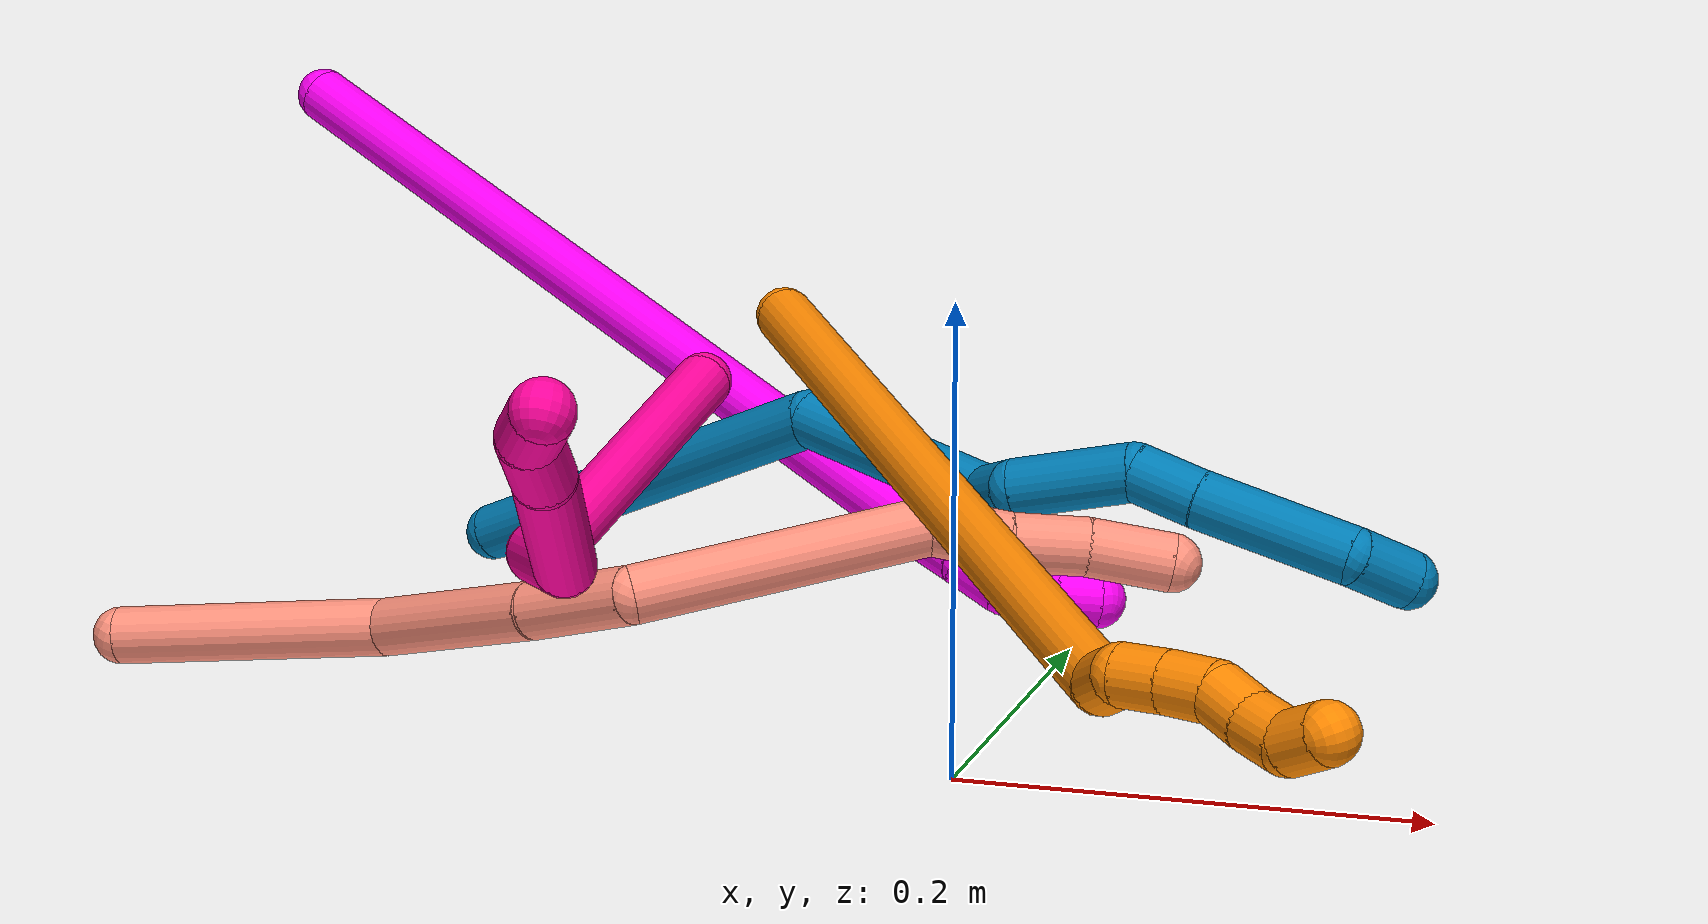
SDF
<sdf version="1.7">
 <world name="default">
  <model name="9">
   <static>0</static>
   <link name="9">
    <collision name="collision-cylinder-e_1_1_4">
     <pose>0.041491 -0.010642 -0.088415 3.0218 0.436008 2.61285</pose>
     <geometry><cylinder><radius>0.0125</radius><length>0.196489</length></cylinder></geometry>
     <surface>
      <friction><ode><mu>1.16</mu><mu2>1.16</mu2><slip1>0</slip1><slip2>0</slip2></ode></friction>
      <contact><ode><kp>1e+06</kp><kd>1</kd><max_vel>0</max_vel><min_depth>0.001</min_depth></ode></contact>
     </surface>
    </collision>
    <visual name="visual-cylinder-e_1_1_4">
     <pose>0.041491 -0.010642 -0.088415 3.0218 0.436008 2.61285</pose>
     <geometry><cylinder><radius>0.0125</radius><length>0.196489</length></cylinder></geometry>
     <material><ambient>0 0.490196 0.709804 1</ambient></material>
    </visual>
    <collision name="collision-cylinder-e_2_4_5">
     <pose>0.125454 -0.02054 -0.202702 -3.1128 1.02348 -3.09034</pose>
     <geometry><cylinder><radius>0.0125</radius><length>0.099474</length></cylinder></geometry>
     <surface>
      <friction><ode><mu>1.16</mu><mu2>1.16</mu2><slip1>0</slip1><slip2>0</slip2></ode></friction>
      <contact><ode><kp>1e+06</kp><kd>1</kd><max_vel>0</max_vel><min_depth>0.001</min_depth></ode></contact>
     </surface>
    </collision>
    <visual name="visual-cylinder-e_2_4_5">
     <pose>0.125454 -0.02054 -0.202702 -3.1128 1.02348 -3.09034</pose>
     <geometry><cylinder><radius>0.0125</radius><length>0.099474</length></cylinder></geometry>
     <material><ambient>0 0.490196 0.709804 1</ambient></material>
    </visual>
    <collision name="collision-cylinder-e_3_5_6">
     <pose>0.173289 -0.015165 -0.239986 -2.75618 0.410713 -1.63603</pose>
     <geometry><cylinder><radius>0.0125</radius><length>0.026866</length></cylinder></geometry>
     <surface>
      <friction><ode><mu>1.16</mu><mu2>1.16</mu2><slip1>0</slip1><slip2>0</slip2></ode></friction>
      <contact><ode><kp>1e+06</kp><kd>1</kd><max_vel>0</max_vel><min_depth>0.001</min_depth></ode></contact>
     </surface>
    </collision>
    <visual name="visual-cylinder-e_3_5_6">
     <pose>0.173289 -0.015165 -0.239986 -2.75618 0.410713 -1.63603</pose>
     <geometry><cylinder><radius>0.0125</radius><length>0.026866</length></cylinder></geometry>
     <material><ambient>0 0.490196 0.709804 1</ambient></material>
    </visual>
    <collision name="collision-cylinder-e_4_6_7">
     <pose>0.193623 -0.020248 -0.270865 2.67878 0.602728 1.84433</pose>
     <geometry><cylinder><radius>0.0125</radius><length>0.052816</length></cylinder></geometry>
     <surface>
      <friction><ode><mu>1.16</mu><mu2>1.16</mu2><slip1>0</slip1><slip2>0</slip2></ode></friction>
      <contact><ode><kp>1e+06</kp><kd>1</kd><max_vel>0</max_vel><min_depth>0.001</min_depth></ode></contact>
     </surface>
    </collision>
    <visual name="visual-cylinder-e_4_6_7">
     <pose>0.193623 -0.020248 -0.270865 2.67878 0.602728 1.84433</pose>
     <geometry><cylinder><radius>0.0125</radius><length>0.052816</length></cylinder></geometry>
     <material><ambient>0 0.490196 0.709804 1</ambient></material>
    </visual>
    <collision name="collision-cylinder-e_5_7_8">
     <pose>0.221805 -0.033551 -0.295642 2.54701 1.11905 2.23168</pose>
     <geometry><cylinder><radius>0.0125</radius><length>0.029369</length></cylinder></geometry>
     <surface>
      <friction><ode><mu>1.16</mu><mu2>1.16</mu2><slip1>0</slip1><slip2>0</slip2></ode></friction>
      <contact><ode><kp>1e+06</kp><kd>1</kd><max_vel>0</max_vel><min_depth>0.001</min_depth></ode></contact>
     </surface>
    </collision>
    <visual name="visual-cylinder-e_5_7_8">
     <pose>0.221805 -0.033551 -0.295642 2.54701 1.11905 2.23168</pose>
     <geometry><cylinder><radius>0.0125</radius><length>0.029369</length></cylinder></geometry>
     <material><ambient>0 0.490196 0.709804 1</ambient></material>
    </visual>
    <collision name="collision-cylinder-e_6_8_9">
     <pose>0.264694 -0.047169 -0.313663 2.47369 1.07139 2.08373</pose>
     <geometry><cylinder><radius>0.0125</radius><length>0.067612</length></cylinder></geometry>
     <surface>
      <friction><ode><mu>1.16</mu><mu2>1.16</mu2><slip1>0</slip1><slip2>0</slip2></ode></friction>
      <contact><ode><kp>1e+06</kp><kd>1</kd><max_vel>0</max_vel><min_depth>0.001</min_depth></ode></contact>
     </surface>
    </collision>
    <visual name="visual-cylinder-e_6_8_9">
     <pose>0.264694 -0.047169 -0.313663 2.47369 1.07139 2.08373</pose>
     <geometry><cylinder><radius>0.0125</radius><length>0.067612</length></cylinder></geometry>
     <material><ambient>0 0.490196 0.709804 1</ambient></material>
    </visual>
    <collision name="collision-cylinder-e_7_9_2">
     <pose>0.303669 -0.067159 -0.325106 1.44421 0.746912 0.664672</pose>
     <geometry><cylinder><radius>0.0125</radius><length>0.027374</length></cylinder></geometry>
     <surface>
      <friction><ode><mu>1.16</mu><mu2>1.16</mu2><slip1>0</slip1><slip2>0</slip2></ode></friction>
      <contact><ode><kp>1e+06</kp><kd>1</kd><max_vel>0</max_vel><min_depth>0.001</min_depth></ode></contact>
     </surface>
    </collision>
    <visual name="visual-cylinder-e_7_9_2">
     <pose>0.303669 -0.067159 -0.325106 1.44421 0.746912 0.664672</pose>
     <geometry><cylinder><radius>0.0125</radius><length>0.027374</length></cylinder></geometry>
     <material><ambient>0 0.490196 0.709804 1</ambient></material>
    </visual>
    <collision name="collision-sphere-2">
     <pose>0.312968 -0.077122 -0.323838 0 -0 0</pose>
     <geometry><sphere><radius>0.0125</radius></sphere></geometry>
     <surface>
      <friction><ode><mu>1.16</mu><mu2>1.16</mu2><slip1>0</slip1><slip2>0</slip2></ode></friction>
      <contact><ode><kp>1e+06</kp><kd>1</kd><max_vel>0</max_vel><min_depth>0.001</min_depth></ode></contact>
     </surface>
    </collision>
    <visual name="visual-sphere-2">
     <pose>0.312968 -0.077122 -0.323838 0 -0 0</pose>
     <geometry><sphere><radius>0.0125</radius></sphere></geometry>
     <material><ambient>0 0.490196 0.709804 1</ambient></material>
    </visual>
    <collision name="collision-sphere-9">
     <pose>0.294371 -0.057196 -0.326374 0 -0 0</pose>
     <geometry><sphere><radius>0.0125</radius></sphere></geometry>
     <surface>
      <friction><ode><mu>1.16</mu><mu2>1.16</mu2><slip1>0</slip1><slip2>0</slip2></ode></friction>
      <contact><ode><kp>1e+06</kp><kd>1</kd><max_vel>0</max_vel><min_depth>0.001</min_depth></ode></contact>
     </surface>
    </collision>
    <visual name="visual-sphere-9">
     <pose>0.294371 -0.057196 -0.326374 0 -0 0</pose>
     <geometry><sphere><radius>0.0125</radius></sphere></geometry>
     <material><ambient>0 0.490196 0.709804 1</ambient></material>
    </visual>
    <collision name="collision-sphere-4">
     <pose>0.082982 -0.021285 -0.17683 0 -0 0</pose>
     <geometry><sphere><radius>0.0125</radius></sphere></geometry>
     <surface>
      <friction><ode><mu>1.16</mu><mu2>1.16</mu2><slip1>0</slip1><slip2>0</slip2></ode></friction>
      <contact><ode><kp>1e+06</kp><kd>1</kd><max_vel>0</max_vel><min_depth>0.001</min_depth></ode></contact>
     </surface>
    </collision>
    <visual name="visual-sphere-4">
     <pose>0.082982 -0.021285 -0.17683 0 -0 0</pose>
     <geometry><sphere><radius>0.0125</radius></sphere></geometry>
     <material><ambient>0 0.490196 0.709804 1</ambient></material>
    </visual>
    <collision name="collision-sphere-1">
     <geometry><sphere><radius>0.0125</radius></sphere></geometry>
     <surface>
      <friction><ode><mu>1.16</mu><mu2>1.16</mu2><slip1>0</slip1><slip2>0</slip2></ode></friction>
      <contact><ode><kp>1e+06</kp><kd>1</kd><max_vel>0</max_vel><min_depth>0.001</min_depth></ode></contact>
     </surface>
    </collision>
    <visual name="visual-sphere-1">
     <geometry><sphere><radius>0.0125</radius></sphere></geometry>
     <material><ambient>0 0.490196 0.709804 1</ambient></material>
    </visual>
    <collision name="collision-sphere-8">
     <pose>0.235017 -0.037142 -0.300952 0 -0 0</pose>
     <geometry><sphere><radius>0.0125</radius></sphere></geometry>
     <surface>
      <friction><ode><mu>1.16</mu><mu2>1.16</mu2><slip1>0</slip1><slip2>0</slip2></ode></friction>
      <contact><ode><kp>1e+06</kp><kd>1</kd><max_vel>0</max_vel><min_depth>0.001</min_depth></ode></contact>
     </surface>
    </collision>
    <visual name="visual-sphere-8">
     <pose>0.235017 -0.037142 -0.300952 0 -0 0</pose>
     <geometry><sphere><radius>0.0125</radius></sphere></geometry>
     <material><ambient>0 0.490196 0.709804 1</ambient></material>
    </visual>
    <collision name="collision-sphere-5">
     <pose>0.167926 -0.019795 -0.228574 0 -0 0</pose>
     <geometry><sphere><radius>0.0125</radius></sphere></geometry>
     <surface>
      <friction><ode><mu>1.16</mu><mu2>1.16</mu2><slip1>0</slip1><slip2>0</slip2></ode></friction>
      <contact><ode><kp>1e+06</kp><kd>1</kd><max_vel>0</max_vel><min_depth>0.001</min_depth></ode></contact>
     </surface>
    </collision>
    <visual name="visual-sphere-5">
     <pose>0.167926 -0.019795 -0.228574 0 -0 0</pose>
     <geometry><sphere><radius>0.0125</radius></sphere></geometry>
     <material><ambient>0 0.490196 0.709804 1</ambient></material>
    </visual>
    <collision name="collision-sphere-6">
     <pose>0.178652 -0.010535 -0.251399 0 -0 0</pose>
     <geometry><sphere><radius>0.0125</radius></sphere></geometry>
     <surface>
      <friction><ode><mu>1.16</mu><mu2>1.16</mu2><slip1>0</slip1><slip2>0</slip2></ode></friction>
      <contact><ode><kp>1e+06</kp><kd>1</kd><max_vel>0</max_vel><min_depth>0.001</min_depth></ode></contact>
     </surface>
    </collision>
    <visual name="visual-sphere-6">
     <pose>0.178652 -0.010535 -0.251399 0 -0 0</pose>
     <geometry><sphere><radius>0.0125</radius></sphere></geometry>
     <material><ambient>0 0.490196 0.709804 1</ambient></material>
    </visual>
    <collision name="collision-sphere-7">
     <pose>0.208593 -0.02996 -0.290331 0 -0 0</pose>
     <geometry><sphere><radius>0.0125</radius></sphere></geometry>
     <surface>
      <friction><ode><mu>1.16</mu><mu2>1.16</mu2><slip1>0</slip1><slip2>0</slip2></ode></friction>
      <contact><ode><kp>1e+06</kp><kd>1</kd><max_vel>0</max_vel><min_depth>0.001</min_depth></ode></contact>
     </surface>
    </collision>
    <visual name="visual-sphere-7">
     <pose>0.208593 -0.02996 -0.290331 0 -0 0</pose>
     <geometry><sphere><radius>0.0125</radius></sphere></geometry>
     <material><ambient>0 0.490196 0.709804 1</ambient></material>
    </visual>
    <inertial>
     <pose>0.136474 -0.023248 -0.194158 0 -0 0</pose>
     <mass>0.5</mass>
     <inertia>
      <ixx>-0.000217</ixx>
      <ixy>0</ixy>
      <ixz>0</ixz>
      <iyy>0.000994</iyy>
      <iyz>0</iyz>
      <izz>-0.000324</izz>
     </inertia>
    </inertial>
   </link>
   <pose>-0.26362 0.173225 0.040789 -2.98672 0.718904 -0.31623</pose>
  </model>
  <model name="10">
   <static>0</static>
   <link name="10">
    <collision name="collision-cylinder-e_1_1_4">
     <pose>0.079428 -0.023092 -0.190887 3.02121 0.39174 2.55183</pose>
     <geometry><cylinder><radius>0.0125</radius><length>0.416076</length></cylinder></geometry>
     <surface>
      <friction><ode><mu>1.16</mu><mu2>1.16</mu2><slip1>0</slip1><slip2>0</slip2></ode></friction>
      <contact><ode><kp>1e+06</kp><kd>1</kd><max_vel>0</max_vel><min_depth>0.001</min_depth></ode></contact>
     </surface>
    </collision>
    <visual name="visual-cylinder-e_1_1_4">
     <pose>0.079428 -0.023092 -0.190887 3.02121 0.39174 2.55183</pose>
     <geometry><cylinder><radius>0.0125</radius><length>0.416076</length></cylinder></geometry>
     <material><ambient>1 0 0.964706 1</ambient></material>
    </visual>
    <collision name="collision-cylinder-e_2_4_5">
     <pose>0.163016 -0.047439 -0.390918 3.00507 0.423392 2.52562</pose>
     <geometry><cylinder><radius>0.0125</radius><length>0.020249</length></cylinder></geometry>
     <surface>
      <friction><ode><mu>1.16</mu><mu2>1.16</mu2><slip1>0</slip1><slip2>0</slip2></ode></friction>
      <contact><ode><kp>1e+06</kp><kd>1</kd><max_vel>0</max_vel><min_depth>0.001</min_depth></ode></contact>
     </surface>
    </collision>
    <visual name="visual-cylinder-e_2_4_5">
     <pose>0.163016 -0.047439 -0.390918 3.00507 0.423392 2.52562</pose>
     <geometry><cylinder><radius>0.0125</radius><length>0.020249</length></cylinder></geometry>
     <material><ambient>1 0 0.964706 1</ambient></material>
    </visual>
    <collision name="collision-cylinder-e_3_5_6">
     <pose>0.173634 -0.04708 -0.40899 -2.9626 0.61866 -2.59413</pose>
     <geometry><cylinder><radius>0.0125</radius><length>0.022272</length></cylinder></geometry>
     <surface>
      <friction><ode><mu>1.16</mu><mu2>1.16</mu2><slip1>0</slip1><slip2>0</slip2></ode></friction>
      <contact><ode><kp>1e+06</kp><kd>1</kd><max_vel>0</max_vel><min_depth>0.001</min_depth></ode></contact>
     </surface>
    </collision>
    <visual name="visual-cylinder-e_3_5_6">
     <pose>0.173634 -0.04708 -0.40899 -2.9626 0.61866 -2.59413</pose>
     <geometry><cylinder><radius>0.0125</radius><length>0.022272</length></cylinder></geometry>
     <material><ambient>1 0 0.964706 1</ambient></material>
    </visual>
    <collision name="collision-cylinder-e_4_6_7">
     <pose>0.189936 -0.04313 -0.421341 -2.54287 1.17231 -2.27138</pose>
     <geometry><cylinder><radius>0.0125</radius><length>0.02136</length></cylinder></geometry>
     <surface>
      <friction><ode><mu>1.16</mu><mu2>1.16</mu2><slip1>0</slip1><slip2>0</slip2></ode></friction>
      <contact><ode><kp>1e+06</kp><kd>1</kd><max_vel>0</max_vel><min_depth>0.001</min_depth></ode></contact>
     </surface>
    </collision>
    <visual name="visual-cylinder-e_4_6_7">
     <pose>0.189936 -0.04313 -0.421341 -2.54287 1.17231 -2.27138</pose>
     <geometry><cylinder><radius>0.0125</radius><length>0.02136</length></cylinder></geometry>
     <material><ambient>1 0 0.964706 1</ambient></material>
    </visual>
    <collision name="collision-cylinder-e_5_7_2">
     <pose>0.209373 -0.039957 -0.427535 -2.84815 1.27773 -2.74881</pose>
     <geometry><cylinder><radius>0.0125</radius><length>0.020042</length></cylinder></geometry>
     <surface>
      <friction><ode><mu>1.16</mu><mu2>1.16</mu2><slip1>0</slip1><slip2>0</slip2></ode></friction>
      <contact><ode><kp>1e+06</kp><kd>1</kd><max_vel>0</max_vel><min_depth>0.001</min_depth></ode></contact>
     </surface>
    </collision>
    <visual name="visual-cylinder-e_5_7_2">
     <pose>0.209373 -0.039957 -0.427535 -2.84815 1.27773 -2.74881</pose>
     <geometry><cylinder><radius>0.0125</radius><length>0.020042</length></cylinder></geometry>
     <material><ambient>1 0 0.964706 1</ambient></material>
    </visual>
    <collision name="collision-sphere-2">
     <pose>0.218967 -0.039119 -0.430306 0 -0 0</pose>
     <geometry><sphere><radius>0.0125</radius></sphere></geometry>
     <surface>
      <friction><ode><mu>1.16</mu><mu2>1.16</mu2><slip1>0</slip1><slip2>0</slip2></ode></friction>
      <contact><ode><kp>1e+06</kp><kd>1</kd><max_vel>0</max_vel><min_depth>0.001</min_depth></ode></contact>
     </surface>
    </collision>
    <visual name="visual-sphere-2">
     <pose>0.218967 -0.039119 -0.430306 0 -0 0</pose>
     <geometry><sphere><radius>0.0125</radius></sphere></geometry>
     <material><ambient>1 0 0.964706 1</ambient></material>
    </visual>
    <collision name="collision-sphere-7">
     <pose>0.199779 -0.040794 -0.424764 0 -0 0</pose>
     <geometry><sphere><radius>0.0125</radius></sphere></geometry>
     <surface>
      <friction><ode><mu>1.16</mu><mu2>1.16</mu2><slip1>0</slip1><slip2>0</slip2></ode></friction>
      <contact><ode><kp>1e+06</kp><kd>1</kd><max_vel>0</max_vel><min_depth>0.001</min_depth></ode></contact>
     </surface>
    </collision>
    <visual name="visual-sphere-7">
     <pose>0.199779 -0.040794 -0.424764 0 -0 0</pose>
     <geometry><sphere><radius>0.0125</radius></sphere></geometry>
     <material><ambient>1 0 0.964706 1</ambient></material>
    </visual>
    <collision name="collision-sphere-6">
     <pose>0.180093 -0.045465 -0.417917 0 -0 0</pose>
     <geometry><sphere><radius>0.0125</radius></sphere></geometry>
     <surface>
      <friction><ode><mu>1.16</mu><mu2>1.16</mu2><slip1>0</slip1><slip2>0</slip2></ode></friction>
      <contact><ode><kp>1e+06</kp><kd>1</kd><max_vel>0</max_vel><min_depth>0.001</min_depth></ode></contact>
     </surface>
    </collision>
    <visual name="visual-sphere-6">
     <pose>0.180093 -0.045465 -0.417917 0 -0 0</pose>
     <geometry><sphere><radius>0.0125</radius></sphere></geometry>
     <material><ambient>1 0 0.964706 1</ambient></material>
    </visual>
    <collision name="collision-sphere-5">
     <pose>0.167176 -0.048696 -0.400063 0 -0 0</pose>
     <geometry><sphere><radius>0.0125</radius></sphere></geometry>
     <surface>
      <friction><ode><mu>1.16</mu><mu2>1.16</mu2><slip1>0</slip1><slip2>0</slip2></ode></friction>
      <contact><ode><kp>1e+06</kp><kd>1</kd><max_vel>0</max_vel><min_depth>0.001</min_depth></ode></contact>
     </surface>
    </collision>
    <visual name="visual-sphere-5">
     <pose>0.167176 -0.048696 -0.400063 0 -0 0</pose>
     <geometry><sphere><radius>0.0125</radius></sphere></geometry>
     <material><ambient>1 0 0.964706 1</ambient></material>
    </visual>
    <collision name="collision-sphere-1">
     <geometry><sphere><radius>0.0125</radius></sphere></geometry>
     <surface>
      <friction><ode><mu>1.16</mu><mu2>1.16</mu2><slip1>0</slip1><slip2>0</slip2></ode></friction>
      <contact><ode><kp>1e+06</kp><kd>1</kd><max_vel>0</max_vel><min_depth>0.001</min_depth></ode></contact>
     </surface>
    </collision>
    <visual name="visual-sphere-1">
     <geometry><sphere><radius>0.0125</radius></sphere></geometry>
     <material><ambient>1 0 0.964706 1</ambient></material>
    </visual>
    <collision name="collision-sphere-4">
     <pose>0.158857 -0.046183 -0.381774 0 -0 0</pose>
     <geometry><sphere><radius>0.0125</radius></sphere></geometry>
     <surface>
      <friction><ode><mu>1.16</mu><mu2>1.16</mu2><slip1>0</slip1><slip2>0</slip2></ode></friction>
      <contact><ode><kp>1e+06</kp><kd>1</kd><max_vel>0</max_vel><min_depth>0.001</min_depth></ode></contact>
     </surface>
    </collision>
    <visual name="visual-sphere-4">
     <pose>0.158857 -0.046183 -0.381774 0 -0 0</pose>
     <geometry><sphere><radius>0.0125</radius></sphere></geometry>
     <material><ambient>1 0 0.964706 1</ambient></material>
    </visual>
    <inertial>
     <pose>0.09694 -0.026678 -0.228034 0 -0 0</pose>
     <mass>0.5</mass>
     <inertia>
      <ixx>-0.001516</ixx>
      <ixy>0</ixy>
      <ixz>0</ixz>
      <iyy>0.008215</iyy>
      <iyz>0</iyz>
      <izz>-0.001669</izz>
     </inertia>
    </inertial>
   </link>
   <pose>-0.389795 0.28885 0.216321 -1.01522 -0.10839 0.634911</pose>
  </model>
  <model name="16">
   <static>0</static>
   <link name="16">
    <collision name="collision-cylinder-e_1_1_4">
     <pose>0.027749 -0.000234 -0.055566 3.13739 0.463149 3.12375</pose>
     <geometry><cylinder><radius>0.0125</radius><length>0.124219</length></cylinder></geometry>
     <surface>
      <friction><ode><mu>1.16</mu><mu2>1.16</mu2><slip1>0</slip1><slip2>0</slip2></ode></friction>
      <contact><ode><kp>1e+06</kp><kd>1</kd><max_vel>0</max_vel><min_depth>0.001</min_depth></ode></contact>
     </surface>
    </collision>
    <visual name="visual-cylinder-e_1_1_4">
     <pose>0.027749 -0.000234 -0.055566 3.13739 0.463149 3.12375</pose>
     <geometry><cylinder><radius>0.0125</radius><length>0.124219</length></cylinder></geometry>
     <material><ambient>1 0.576471 0.494118 1</ambient></material>
    </visual>
    <collision name="collision-cylinder-e_2_4_5">
     <pose>0.068975 -0.021784 -0.150242 2.64257 0.293835 1.05227</pose>
     <geometry><cylinder><radius>0.0125</radius><length>0.093074</length></cylinder></geometry>
     <surface>
      <friction><ode><mu>1.16</mu><mu2>1.16</mu2><slip1>0</slip1><slip2>0</slip2></ode></friction>
      <contact><ode><kp>1e+06</kp><kd>1</kd><max_vel>0</max_vel><min_depth>0.001</min_depth></ode></contact>
     </surface>
    </collision>
    <visual name="visual-cylinder-e_2_4_5">
     <pose>0.068975 -0.021784 -0.150242 2.64257 0.293835 1.05227</pose>
     <geometry><cylinder><radius>0.0125</radius><length>0.093074</length></cylinder></geometry>
     <material><ambient>1 0.576471 0.494118 1</ambient></material>
    </visual>
    <collision name="collision-cylinder-e_3_5_6">
     <pose>0.092642 -0.053235 -0.212349 2.7265 0.385159 1.49398</pose>
     <geometry><cylinder><radius>0.0125</radius><length>0.054234</length></cylinder></geometry>
     <surface>
      <friction><ode><mu>1.16</mu><mu2>1.16</mu2><slip1>0</slip1><slip2>0</slip2></ode></friction>
      <contact><ode><kp>1e+06</kp><kd>1</kd><max_vel>0</max_vel><min_depth>0.001</min_depth></ode></contact>
     </surface>
    </collision>
    <visual name="visual-cylinder-e_3_5_6">
     <pose>0.092642 -0.053235 -0.212349 2.7265 0.385159 1.49398</pose>
     <geometry><cylinder><radius>0.0125</radius><length>0.054234</length></cylinder></geometry>
     <material><ambient>1 0.576471 0.494118 1</ambient></material>
    </visual>
    <collision name="collision-cylinder-e_4_6_7">
     <pose>0.146483 -0.045442 -0.277708 -2.74126 0.759231 -2.20071</pose>
     <geometry><cylinder><radius>0.0125</radius><length>0.126832</length></cylinder></geometry>
     <surface>
      <friction><ode><mu>1.16</mu><mu2>1.16</mu2><slip1>0</slip1><slip2>0</slip2></ode></friction>
      <contact><ode><kp>1e+06</kp><kd>1</kd><max_vel>0</max_vel><min_depth>0.001</min_depth></ode></contact>
     </surface>
    </collision>
    <visual name="visual-cylinder-e_4_6_7">
     <pose>0.146483 -0.045442 -0.277708 -2.74126 0.759231 -2.20071</pose>
     <geometry><cylinder><radius>0.0125</radius><length>0.126832</length></cylinder></geometry>
     <material><ambient>1 0.576471 0.494118 1</ambient></material>
    </visual>
    <collision name="collision-cylinder-e_5_7_8">
     <pose>0.195276 -0.022352 -0.335199 -2.81269 0.311081 -1.51416</pose>
     <geometry><cylinder><radius>0.0125</radius><length>0.033583</length></cylinder></geometry>
     <surface>
      <friction><ode><mu>1.16</mu><mu2>1.16</mu2><slip1>0</slip1><slip2>0</slip2></ode></friction>
      <contact><ode><kp>1e+06</kp><kd>1</kd><max_vel>0</max_vel><min_depth>0.001</min_depth></ode></contact>
     </surface>
    </collision>
    <visual name="visual-cylinder-e_5_7_8">
     <pose>0.195276 -0.022352 -0.335199 -2.81269 0.311081 -1.51416</pose>
     <geometry><cylinder><radius>0.0125</radius><length>0.033583</length></cylinder></geometry>
     <material><ambient>1 0.576471 0.494118 1</ambient></material>
    </visual>
    <collision name="collision-cylinder-e_6_8_9">
     <pose>0.207858 -0.010458 -0.3629 -2.65008 0.481001 -1.5483</pose>
     <geometry><cylinder><radius>0.0125</radius><length>0.032171</length></cylinder></geometry>
     <surface>
      <friction><ode><mu>1.16</mu><mu2>1.16</mu2><slip1>0</slip1><slip2>0</slip2></ode></friction>
      <contact><ode><kp>1e+06</kp><kd>1</kd><max_vel>0</max_vel><min_depth>0.001</min_depth></ode></contact>
     </surface>
    </collision>
    <visual name="visual-cylinder-e_6_8_9">
     <pose>0.207858 -0.010458 -0.3629 -2.65008 0.481001 -1.5483</pose>
     <geometry><cylinder><radius>0.0125</radius><length>0.032171</length></cylinder></geometry>
     <material><ambient>1 0.576471 0.494118 1</ambient></material>
    </visual>
    <collision name="collision-cylinder-e_7_9_2">
     <pose>0.221331 0.00289 -0.391022 -2.73926 0.342766 -1.40754</pose>
     <geometry><cylinder><radius>0.0125</radius><length>0.035887</length></cylinder></geometry>
     <surface>
      <friction><ode><mu>1.16</mu><mu2>1.16</mu2><slip1>0</slip1><slip2>0</slip2></ode></friction>
      <contact><ode><kp>1e+06</kp><kd>1</kd><max_vel>0</max_vel><min_depth>0.001</min_depth></ode></contact>
     </surface>
    </collision>
    <visual name="visual-cylinder-e_7_9_2">
     <pose>0.221331 0.00289 -0.391022 -2.73926 0.342766 -1.40754</pose>
     <geometry><cylinder><radius>0.0125</radius><length>0.035887</length></cylinder></geometry>
     <material><ambient>1 0.576471 0.494118 1</ambient></material>
    </visual>
    <collision name="collision-sphere-2">
     <pose>0.227362 0.009507 -0.406573 0 -0 0</pose>
     <geometry><sphere><radius>0.0125</radius></sphere></geometry>
     <surface>
      <friction><ode><mu>1.16</mu><mu2>1.16</mu2><slip1>0</slip1><slip2>0</slip2></ode></friction>
      <contact><ode><kp>1e+06</kp><kd>1</kd><max_vel>0</max_vel><min_depth>0.001</min_depth></ode></contact>
     </surface>
    </collision>
    <visual name="visual-sphere-2">
     <pose>0.227362 0.009507 -0.406573 0 -0 0</pose>
     <geometry><sphere><radius>0.0125</radius></sphere></geometry>
     <material><ambient>1 0.576471 0.494118 1</ambient></material>
    </visual>
    <collision name="collision-sphere-9">
     <pose>0.2153 -0.003728 -0.375472 0 -0 0</pose>
     <geometry><sphere><radius>0.0125</radius></sphere></geometry>
     <surface>
      <friction><ode><mu>1.16</mu><mu2>1.16</mu2><slip1>0</slip1><slip2>0</slip2></ode></friction>
      <contact><ode><kp>1e+06</kp><kd>1</kd><max_vel>0</max_vel><min_depth>0.001</min_depth></ode></contact>
     </surface>
    </collision>
    <visual name="visual-sphere-9">
     <pose>0.2153 -0.003728 -0.375472 0 -0 0</pose>
     <geometry><sphere><radius>0.0125</radius></sphere></geometry>
     <material><ambient>1 0.576471 0.494118 1</ambient></material>
    </visual>
    <collision name="collision-sphere-4">
     <pose>0.055497 -0.000468 -0.111132 0 -0 0</pose>
     <geometry><sphere><radius>0.0125</radius></sphere></geometry>
     <surface>
      <friction><ode><mu>1.16</mu><mu2>1.16</mu2><slip1>0</slip1><slip2>0</slip2></ode></friction>
      <contact><ode><kp>1e+06</kp><kd>1</kd><max_vel>0</max_vel><min_depth>0.001</min_depth></ode></contact>
     </surface>
    </collision>
    <visual name="visual-sphere-4">
     <pose>0.055497 -0.000468 -0.111132 0 -0 0</pose>
     <geometry><sphere><radius>0.0125</radius></sphere></geometry>
     <material><ambient>1 0.576471 0.494118 1</ambient></material>
    </visual>
    <collision name="collision-sphere-1">
     <geometry><sphere><radius>0.0125</radius></sphere></geometry>
     <surface>
      <friction><ode><mu>1.16</mu><mu2>1.16</mu2><slip1>0</slip1><slip2>0</slip2></ode></friction>
      <contact><ode><kp>1e+06</kp><kd>1</kd><max_vel>0</max_vel><min_depth>0.001</min_depth></ode></contact>
     </surface>
    </collision>
    <visual name="visual-sphere-1">
     <geometry><sphere><radius>0.0125</radius></sphere></geometry>
     <material><ambient>1 0.576471 0.494118 1</ambient></material>
    </visual>
    <collision name="collision-sphere-8">
     <pose>0.200416 -0.017188 -0.350328 0 -0 0</pose>
     <geometry><sphere><radius>0.0125</radius></sphere></geometry>
     <surface>
      <friction><ode><mu>1.16</mu><mu2>1.16</mu2><slip1>0</slip1><slip2>0</slip2></ode></friction>
      <contact><ode><kp>1e+06</kp><kd>1</kd><max_vel>0</max_vel><min_depth>0.001</min_depth></ode></contact>
     </surface>
    </collision>
    <visual name="visual-sphere-8">
     <pose>0.200416 -0.017188 -0.350328 0 -0 0</pose>
     <geometry><sphere><radius>0.0125</radius></sphere></geometry>
     <material><ambient>1 0.576471 0.494118 1</ambient></material>
    </visual>
    <collision name="collision-sphere-5">
     <pose>0.082454 -0.0431 -0.189353 0 -0 0</pose>
     <geometry><sphere><radius>0.0125</radius></sphere></geometry>
     <surface>
      <friction><ode><mu>1.16</mu><mu2>1.16</mu2><slip1>0</slip1><slip2>0</slip2></ode></friction>
      <contact><ode><kp>1e+06</kp><kd>1</kd><max_vel>0</max_vel><min_depth>0.001</min_depth></ode></contact>
     </surface>
    </collision>
    <visual name="visual-sphere-5">
     <pose>0.082454 -0.0431 -0.189353 0 -0 0</pose>
     <geometry><sphere><radius>0.0125</radius></sphere></geometry>
     <material><ambient>1 0.576471 0.494118 1</ambient></material>
    </visual>
    <collision name="collision-sphere-6">
     <pose>0.10283 -0.06337 -0.235345 0 -0 0</pose>
     <geometry><sphere><radius>0.0125</radius></sphere></geometry>
     <surface>
      <friction><ode><mu>1.16</mu><mu2>1.16</mu2><slip1>0</slip1><slip2>0</slip2></ode></friction>
      <contact><ode><kp>1e+06</kp><kd>1</kd><max_vel>0</max_vel><min_depth>0.001</min_depth></ode></contact>
     </surface>
    </collision>
    <visual name="visual-sphere-6">
     <pose>0.10283 -0.06337 -0.235345 0 -0 0</pose>
     <geometry><sphere><radius>0.0125</radius></sphere></geometry>
     <material><ambient>1 0.576471 0.494118 1</ambient></material>
    </visual>
    <collision name="collision-sphere-7">
     <pose>0.190137 -0.027515 -0.320071 0 -0 0</pose>
     <geometry><sphere><radius>0.0125</radius></sphere></geometry>
     <surface>
      <friction><ode><mu>1.16</mu><mu2>1.16</mu2><slip1>0</slip1><slip2>0</slip2></ode></friction>
      <contact><ode><kp>1e+06</kp><kd>1</kd><max_vel>0</max_vel><min_depth>0.001</min_depth></ode></contact>
     </surface>
    </collision>
    <visual name="visual-sphere-7">
     <pose>0.190137 -0.027515 -0.320071 0 -0 0</pose>
     <geometry><sphere><radius>0.0125</radius></sphere></geometry>
     <material><ambient>1 0.576471 0.494118 1</ambient></material>
    </visual>
    <inertial>
     <pose>0.109315 -0.023381 -0.209178 0 -0 0</pose>
     <mass>0.5</mass>
     <inertia>
      <ixx>-0.000208</ixx>
      <ixy>0</ixy>
      <ixz>0</ixz>
      <iyy>0.000238</iyy>
      <iyz>0</iyz>
      <izz>-0.000273</izz>
     </inertia>
    </inertial>
   </link>
   <pose>-0.38371 0.029575 0.02096 -1.13757 -0.881843 0.979619</pose>
  </model>
  <model name="18">
   <static>0</static>
   <link name="18">
    <collision name="collision-cylinder-e_1_1_4">
     <pose>-0.021723 -0.043301 -0.060525 2.5206 -0.284006 -0.838284</pose>
     <geometry><cylinder><radius>0.0125</radius><length>0.15505</length></cylinder></geometry>
     <surface>
      <friction><ode><mu>1.16</mu><mu2>1.16</mu2><slip1>0</slip1><slip2>0</slip2></ode></friction>
      <contact><ode><kp>1e+06</kp><kd>1</kd><max_vel>0</max_vel><min_depth>0.001</min_depth></ode></contact>
     </surface>
    </collision>
    <visual name="visual-cylinder-e_1_1_4">
     <pose>-0.021723 -0.043301 -0.060525 2.5206 -0.284006 -0.838284</pose>
     <geometry><cylinder><radius>0.0125</radius><length>0.15505</length></cylinder></geometry>
     <material><ambient>1 0.007843 0.615686 1</ambient></material>
    </visual>
    <collision name="collision-cylinder-e_2_4_5">
     <pose>-0.039982 -0.148367 -0.14568 1.95023 0.052037 0.076751</pose>
     <geometry><cylinder><radius>0.0125</radius><length>0.13317</length></cylinder></geometry>
     <surface>
      <friction><ode><mu>1.16</mu><mu2>1.16</mu2><slip1>0</slip1><slip2>0</slip2></ode></friction>
      <contact><ode><kp>1e+06</kp><kd>1</kd><max_vel>0</max_vel><min_depth>0.001</min_depth></ode></contact>
     </surface>
    </collision>
    <visual name="visual-cylinder-e_2_4_5">
     <pose>-0.039982 -0.148367 -0.14568 1.95023 0.052037 0.076751</pose>
     <geometry><cylinder><radius>0.0125</radius><length>0.13317</length></cylinder></geometry>
     <material><ambient>1 0.007843 0.615686 1</ambient></material>
    </visual>
    <collision name="collision-cylinder-e_3_5_6">
     <pose>-0.029084 -0.229386 -0.179448 2.01397 0.335638 0.523584</pose>
     <geometry><cylinder><radius>0.0125</radius><length>0.045144</length></cylinder></geometry>
     <surface>
      <friction><ode><mu>1.16</mu><mu2>1.16</mu2><slip1>0</slip1><slip2>0</slip2></ode></friction>
      <contact><ode><kp>1e+06</kp><kd>1</kd><max_vel>0</max_vel><min_depth>0.001</min_depth></ode></contact>
     </surface>
    </collision>
    <visual name="visual-cylinder-e_3_5_6">
     <pose>-0.029084 -0.229386 -0.179448 2.01397 0.335638 0.523584</pose>
     <geometry><cylinder><radius>0.0125</radius><length>0.045144</length></cylinder></geometry>
     <material><ambient>1 0.007843 0.615686 1</ambient></material>
    </visual>
    <collision name="collision-cylinder-e_4_6_7">
     <pose>-0.023073 -0.304494 -0.193474 1.65808 -0.025377 -0.027694</pose>
     <geometry><cylinder><radius>0.0125</radius><length>0.112173</length></cylinder></geometry>
     <surface>
      <friction><ode><mu>1.16</mu><mu2>1.16</mu2><slip1>0</slip1><slip2>0</slip2></ode></friction>
      <contact><ode><kp>1e+06</kp><kd>1</kd><max_vel>0</max_vel><min_depth>0.001</min_depth></ode></contact>
     </surface>
    </collision>
    <visual name="visual-cylinder-e_4_6_7">
     <pose>-0.023073 -0.304494 -0.193474 1.65808 -0.025377 -0.027694</pose>
     <geometry><cylinder><radius>0.0125</radius><length>0.112173</length></cylinder></geometry>
     <material><ambient>1 0.007843 0.615686 1</ambient></material>
    </visual>
    <collision name="collision-cylinder-e_5_7_8">
     <pose>-0.027009 -0.375503 -0.197336 1.50316 -0.163986 -0.153297</pose>
     <geometry><cylinder><radius>0.0125</radius><length>0.03079</length></cylinder></geometry>
     <surface>
      <friction><ode><mu>1.16</mu><mu2>1.16</mu2><slip1>0</slip1><slip2>0</slip2></ode></friction>
      <contact><ode><kp>1e+06</kp><kd>1</kd><max_vel>0</max_vel><min_depth>0.001</min_depth></ode></contact>
     </surface>
    </collision>
    <visual name="visual-cylinder-e_5_7_8">
     <pose>-0.027009 -0.375503 -0.197336 1.50316 -0.163986 -0.153297</pose>
     <geometry><cylinder><radius>0.0125</radius><length>0.03079</length></cylinder></geometry>
     <material><ambient>1 0.007843 0.615686 1</ambient></material>
    </visual>
    <collision name="collision-cylinder-e_6_8_2">
     <pose>-0.026725 -0.402142 -0.195693 1.51723 0.238583 0.226242</pose>
     <geometry><cylinder><radius>0.0125</radius><length>0.023673</length></cylinder></geometry>
     <surface>
      <friction><ode><mu>1.16</mu><mu2>1.16</mu2><slip1>0</slip1><slip2>0</slip2></ode></friction>
      <contact><ode><kp>1e+06</kp><kd>1</kd><max_vel>0</max_vel><min_depth>0.001</min_depth></ode></contact>
     </surface>
    </collision>
    <visual name="visual-cylinder-e_6_8_2">
     <pose>-0.026725 -0.402142 -0.195693 1.51723 0.238583 0.226242</pose>
     <geometry><cylinder><radius>0.0125</radius><length>0.023673</length></cylinder></geometry>
     <material><ambient>1 0.007843 0.615686 1</ambient></material>
    </visual>
    <collision name="collision-sphere-2">
     <pose>-0.023928 -0.413626 -0.195078 0 -0 0</pose>
     <geometry><sphere><radius>0.0125</radius></sphere></geometry>
     <surface>
      <friction><ode><mu>1.16</mu><mu2>1.16</mu2><slip1>0</slip1><slip2>0</slip2></ode></friction>
      <contact><ode><kp>1e+06</kp><kd>1</kd><max_vel>0</max_vel><min_depth>0.001</min_depth></ode></contact>
     </surface>
    </collision>
    <visual name="visual-sphere-2">
     <pose>-0.023928 -0.413626 -0.195078 0 -0 0</pose>
     <geometry><sphere><radius>0.0125</radius></sphere></geometry>
     <material><ambient>1 0.007843 0.615686 1</ambient></material>
    </visual>
    <collision name="collision-sphere-4">
     <pose>-0.043446 -0.086601 -0.12105 0 -0 0</pose>
     <geometry><sphere><radius>0.0125</radius></sphere></geometry>
     <surface>
      <friction><ode><mu>1.16</mu><mu2>1.16</mu2><slip1>0</slip1><slip2>0</slip2></ode></friction>
      <contact><ode><kp>1e+06</kp><kd>1</kd><max_vel>0</max_vel><min_depth>0.001</min_depth></ode></contact>
     </surface>
    </collision>
    <visual name="visual-sphere-4">
     <pose>-0.043446 -0.086601 -0.12105 0 -0 0</pose>
     <geometry><sphere><radius>0.0125</radius></sphere></geometry>
     <material><ambient>1 0.007843 0.615686 1</ambient></material>
    </visual>
    <collision name="collision-sphere-1">
     <geometry><sphere><radius>0.0125</radius></sphere></geometry>
     <surface>
      <friction><ode><mu>1.16</mu><mu2>1.16</mu2><slip1>0</slip1><slip2>0</slip2></ode></friction>
      <contact><ode><kp>1e+06</kp><kd>1</kd><max_vel>0</max_vel><min_depth>0.001</min_depth></ode></contact>
     </surface>
    </collision>
    <visual name="visual-sphere-1">
     <geometry><sphere><radius>0.0125</radius></sphere></geometry>
     <material><ambient>1 0.007843 0.615686 1</ambient></material>
    </visual>
    <collision name="collision-sphere-8">
     <pose>-0.029522 -0.390657 -0.196309 0 -0 0</pose>
     <geometry><sphere><radius>0.0125</radius></sphere></geometry>
     <surface>
      <friction><ode><mu>1.16</mu><mu2>1.16</mu2><slip1>0</slip1><slip2>0</slip2></ode></friction>
      <contact><ode><kp>1e+06</kp><kd>1</kd><max_vel>0</max_vel><min_depth>0.001</min_depth></ode></contact>
     </surface>
    </collision>
    <visual name="visual-sphere-8">
     <pose>-0.029522 -0.390657 -0.196309 0 -0 0</pose>
     <geometry><sphere><radius>0.0125</radius></sphere></geometry>
     <material><ambient>1 0.007843 0.615686 1</ambient></material>
    </visual>
    <collision name="collision-sphere-5">
     <pose>-0.036519 -0.210132 -0.170309 0 -0 0</pose>
     <geometry><sphere><radius>0.0125</radius></sphere></geometry>
     <surface>
      <friction><ode><mu>1.16</mu><mu2>1.16</mu2><slip1>0</slip1><slip2>0</slip2></ode></friction>
      <contact><ode><kp>1e+06</kp><kd>1</kd><max_vel>0</max_vel><min_depth>0.001</min_depth></ode></contact>
     </surface>
    </collision>
    <visual name="visual-sphere-5">
     <pose>-0.036519 -0.210132 -0.170309 0 -0 0</pose>
     <geometry><sphere><radius>0.0125</radius></sphere></geometry>
     <material><ambient>1 0.007843 0.615686 1</ambient></material>
    </visual>
    <collision name="collision-sphere-6">
     <pose>-0.02165 -0.24864 -0.188587 0 -0 0</pose>
     <geometry><sphere><radius>0.0125</radius></sphere></geometry>
     <surface>
      <friction><ode><mu>1.16</mu><mu2>1.16</mu2><slip1>0</slip1><slip2>0</slip2></ode></friction>
      <contact><ode><kp>1e+06</kp><kd>1</kd><max_vel>0</max_vel><min_depth>0.001</min_depth></ode></contact>
     </surface>
    </collision>
    <visual name="visual-sphere-6">
     <pose>-0.02165 -0.24864 -0.188587 0 -0 0</pose>
     <geometry><sphere><radius>0.0125</radius></sphere></geometry>
     <material><ambient>1 0.007843 0.615686 1</ambient></material>
    </visual>
    <collision name="collision-sphere-7">
     <pose>-0.024496 -0.360349 -0.198362 0 -0 0</pose>
     <geometry><sphere><radius>0.0125</radius></sphere></geometry>
     <surface>
      <friction><ode><mu>1.16</mu><mu2>1.16</mu2><slip1>0</slip1><slip2>0</slip2></ode></friction>
      <contact><ode><kp>1e+06</kp><kd>1</kd><max_vel>0</max_vel><min_depth>0.001</min_depth></ode></contact>
     </surface>
    </collision>
    <visual name="visual-sphere-7">
     <pose>-0.024496 -0.360349 -0.198362 0 -0 0</pose>
     <geometry><sphere><radius>0.0125</radius></sphere></geometry>
     <material><ambient>1 0.007843 0.615686 1</ambient></material>
    </visual>
    <inertial>
     <pose>-0.028116 -0.18413 -0.138594 0 -0 0</pose>
     <mass>0.5</mass>
     <inertia>
      <ixx>0.000328</ixx>
      <ixy>0</ixy>
      <ixz>0</ixz>
      <iyy>-0.000462</iyy>
      <iyz>0</iyz>
      <izz>0.000562</izz>
     </inertia>
    </inertial>
   </link>
   <pose>-0.151228 0.136926 0.127119 -0.639306 0.133221 0.21567</pose>
  </model>
  <model name="19">
   <static>0</static>
   <link name="19">
    <collision name="collision-cylinder-e_1_1_4">
     <pose>0.035076 -0.181087 -0.035066 1.76207 0.187921 0.227488</pose>
     <geometry><cylinder><radius>0.0125</radius><length>0.375514</length></cylinder></geometry>
     <surface>
      <friction><ode><mu>1.16</mu><mu2>1.16</mu2><slip1>0</slip1><slip2>0</slip2></ode></friction>
      <contact><ode><kp>1e+06</kp><kd>1</kd><max_vel>0</max_vel><min_depth>0.001</min_depth></ode></contact>
     </surface>
    </collision>
    <visual name="visual-cylinder-e_1_1_4">
     <pose>0.035076 -0.181087 -0.035066 1.76207 0.187921 0.227488</pose>
     <geometry><cylinder><radius>0.0125</radius><length>0.375514</length></cylinder></geometry>
     <material><ambient>0.996078 0.537255 0 1</ambient></material>
    </visual>
    <collision name="collision-cylinder-e_2_4_5">
     <pose>0.065976 -0.37196 -0.070849 1.64382 -0.402427 -0.432033</pose>
     <geometry><cylinder><radius>0.0125</radius><length>0.021326</length></cylinder></geometry>
     <surface>
      <friction><ode><mu>1.16</mu><mu2>1.16</mu2><slip1>0</slip1><slip2>0</slip2></ode></friction>
      <contact><ode><kp>1e+06</kp><kd>1</kd><max_vel>0</max_vel><min_depth>0.001</min_depth></ode></contact>
     </surface>
    </collision>
    <visual name="visual-cylinder-e_2_4_5">
     <pose>0.065976 -0.37196 -0.070849 1.64382 -0.402427 -0.432033</pose>
     <geometry><cylinder><radius>0.0125</radius><length>0.021326</length></cylinder></geometry>
     <material><ambient>0.996078 0.537255 0 1</ambient></material>
    </visual>
    <collision name="collision-cylinder-e_3_5_6">
     <pose>0.06286 -0.390895 -0.066835 1.09372 0.102629 0.062514</pose>
     <geometry><cylinder><radius>0.0125</radius><length>0.020708</length></cylinder></geometry>
     <surface>
      <friction><ode><mu>1.16</mu><mu2>1.16</mu2><slip1>0</slip1><slip2>0</slip2></ode></friction>
      <contact><ode><kp>1e+06</kp><kd>1</kd><max_vel>0</max_vel><min_depth>0.001</min_depth></ode></contact>
     </surface>
    </collision>
    <visual name="visual-cylinder-e_3_5_6">
     <pose>0.06286 -0.390895 -0.066835 1.09372 0.102629 0.062514</pose>
     <geometry><cylinder><radius>0.0125</radius><length>0.020708</length></cylinder></geometry>
     <material><ambient>0.996078 0.537255 0 1</ambient></material>
    </visual>
    <collision name="collision-cylinder-e_4_6_7">
     <pose>0.065264 -0.409573 -0.057913 1.15626 0.128296 0.083779</pose>
     <geometry><cylinder><radius>0.0125</radius><length>0.020994</length></cylinder></geometry>
     <surface>
      <friction><ode><mu>1.16</mu><mu2>1.16</mu2><slip1>0</slip1><slip2>0</slip2></ode></friction>
      <contact><ode><kp>1e+06</kp><kd>1</kd><max_vel>0</max_vel><min_depth>0.001</min_depth></ode></contact>
     </surface>
    </collision>
    <visual name="visual-cylinder-e_4_6_7">
     <pose>0.065264 -0.409573 -0.057913 1.15626 0.128296 0.083779</pose>
     <geometry><cylinder><radius>0.0125</radius><length>0.020994</length></cylinder></geometry>
     <material><ambient>0.996078 0.537255 0 1</ambient></material>
    </visual>
    <collision name="collision-cylinder-e_5_7_8">
     <pose>0.070559 -0.428517 -0.052663 1.45903 0.395138 0.354192</pose>
     <geometry><cylinder><radius>0.0125</radius><length>0.02053</length></cylinder></geometry>
     <surface>
      <friction><ode><mu>1.16</mu><mu2>1.16</mu2><slip1>0</slip1><slip2>0</slip2></ode></friction>
      <contact><ode><kp>1e+06</kp><kd>1</kd><max_vel>0</max_vel><min_depth>0.001</min_depth></ode></contact>
     </surface>
    </collision>
    <visual name="visual-cylinder-e_5_7_8">
     <pose>0.070559 -0.428517 -0.052663 1.45903 0.395138 0.354192</pose>
     <geometry><cylinder><radius>0.0125</radius><length>0.02053</length></cylinder></geometry>
     <material><ambient>0.996078 0.537255 0 1</ambient></material>
    </visual>
    <collision name="collision-cylinder-e_6_8_9">
     <pose>0.076774 -0.447978 -0.050941 1.50468 0.221228 0.207169</pose>
     <geometry><cylinder><radius>0.0125</radius><length>0.02064</length></cylinder></geometry>
     <surface>
      <friction><ode><mu>1.16</mu><mu2>1.16</mu2><slip1>0</slip1><slip2>0</slip2></ode></friction>
      <contact><ode><kp>1e+06</kp><kd>1</kd><max_vel>0</max_vel><min_depth>0.001</min_depth></ode></contact>
     </surface>
    </collision>
    <visual name="visual-cylinder-e_6_8_9">
     <pose>0.076774 -0.447978 -0.050941 1.50468 0.221228 0.207169</pose>
     <geometry><cylinder><radius>0.0125</radius><length>0.02064</length></cylinder></geometry>
     <material><ambient>0.996078 0.537255 0 1</ambient></material>
    </visual>
    <collision name="collision-cylinder-e_7_9_2">
     <pose>0.07597 -0.467179 -0.047164 1.24304 -0.307396 -0.221006</pose>
     <geometry><cylinder><radius>0.0125</radius><length>0.020288</length></cylinder></geometry>
     <surface>
      <friction><ode><mu>1.16</mu><mu2>1.16</mu2><slip1>0</slip1><slip2>0</slip2></ode></friction>
      <contact><ode><kp>1e+06</kp><kd>1</kd><max_vel>0</max_vel><min_depth>0.001</min_depth></ode></contact>
     </surface>
    </collision>
    <visual name="visual-cylinder-e_7_9_2">
     <pose>0.07597 -0.467179 -0.047164 1.24304 -0.307396 -0.221006</pose>
     <geometry><cylinder><radius>0.0125</radius><length>0.020288</length></cylinder></geometry>
     <material><ambient>0.996078 0.537255 0 1</ambient></material>
    </visual>
    <collision name="collision-sphere-2">
     <pose>0.0729 -0.476333 -0.044051 0 -0 0</pose>
     <geometry><sphere><radius>0.0125</radius></sphere></geometry>
     <surface>
      <friction><ode><mu>1.16</mu><mu2>1.16</mu2><slip1>0</slip1><slip2>0</slip2></ode></friction>
      <contact><ode><kp>1e+06</kp><kd>1</kd><max_vel>0</max_vel><min_depth>0.001</min_depth></ode></contact>
     </surface>
    </collision>
    <visual name="visual-sphere-2">
     <pose>0.0729 -0.476333 -0.044051 0 -0 0</pose>
     <geometry><sphere><radius>0.0125</radius></sphere></geometry>
     <material><ambient>0.996078 0.537255 0 1</ambient></material>
    </visual>
    <collision name="collision-sphere-9">
     <pose>0.079039 -0.458025 -0.050276 0 -0 0</pose>
     <geometry><sphere><radius>0.0125</radius></sphere></geometry>
     <surface>
      <friction><ode><mu>1.16</mu><mu2>1.16</mu2><slip1>0</slip1><slip2>0</slip2></ode></friction>
      <contact><ode><kp>1e+06</kp><kd>1</kd><max_vel>0</max_vel><min_depth>0.001</min_depth></ode></contact>
     </surface>
    </collision>
    <visual name="visual-sphere-9">
     <pose>0.079039 -0.458025 -0.050276 0 -0 0</pose>
     <geometry><sphere><radius>0.0125</radius></sphere></geometry>
     <material><ambient>0.996078 0.537255 0 1</ambient></material>
    </visual>
    <collision name="collision-sphere-4">
     <pose>0.070152 -0.362175 -0.070133 0 -0 0</pose>
     <geometry><sphere><radius>0.0125</radius></sphere></geometry>
     <surface>
      <friction><ode><mu>1.16</mu><mu2>1.16</mu2><slip1>0</slip1><slip2>0</slip2></ode></friction>
      <contact><ode><kp>1e+06</kp><kd>1</kd><max_vel>0</max_vel><min_depth>0.001</min_depth></ode></contact>
     </surface>
    </collision>
    <visual name="visual-sphere-4">
     <pose>0.070152 -0.362175 -0.070133 0 -0 0</pose>
     <geometry><sphere><radius>0.0125</radius></sphere></geometry>
     <material><ambient>0.996078 0.537255 0 1</ambient></material>
    </visual>
    <collision name="collision-sphere-1">
     <geometry><sphere><radius>0.0125</radius></sphere></geometry>
     <surface>
      <friction><ode><mu>1.16</mu><mu2>1.16</mu2><slip1>0</slip1><slip2>0</slip2></ode></friction>
      <contact><ode><kp>1e+06</kp><kd>1</kd><max_vel>0</max_vel><min_depth>0.001</min_depth></ode></contact>
     </surface>
    </collision>
    <visual name="visual-sphere-1">
     <geometry><sphere><radius>0.0125</radius></sphere></geometry>
     <material><ambient>0.996078 0.537255 0 1</ambient></material>
    </visual>
    <collision name="collision-sphere-8">
     <pose>0.07451 -0.437932 -0.051606 0 -0 0</pose>
     <geometry><sphere><radius>0.0125</radius></sphere></geometry>
     <surface>
      <friction><ode><mu>1.16</mu><mu2>1.16</mu2><slip1>0</slip1><slip2>0</slip2></ode></friction>
      <contact><ode><kp>1e+06</kp><kd>1</kd><max_vel>0</max_vel><min_depth>0.001</min_depth></ode></contact>
     </surface>
    </collision>
    <visual name="visual-sphere-8">
     <pose>0.07451 -0.437932 -0.051606 0 -0 0</pose>
     <geometry><sphere><radius>0.0125</radius></sphere></geometry>
     <material><ambient>0.996078 0.537255 0 1</ambient></material>
    </visual>
    <collision name="collision-sphere-5">
     <pose>0.0618 -0.381745 -0.071565 0 -0 0</pose>
     <geometry><sphere><radius>0.0125</radius></sphere></geometry>
     <surface>
      <friction><ode><mu>1.16</mu><mu2>1.16</mu2><slip1>0</slip1><slip2>0</slip2></ode></friction>
      <contact><ode><kp>1e+06</kp><kd>1</kd><max_vel>0</max_vel><min_depth>0.001</min_depth></ode></contact>
     </surface>
    </collision>
    <visual name="visual-sphere-5">
     <pose>0.0618 -0.381745 -0.071565 0 -0 0</pose>
     <geometry><sphere><radius>0.0125</radius></sphere></geometry>
     <material><ambient>0.996078 0.537255 0 1</ambient></material>
    </visual>
    <collision name="collision-sphere-6">
     <pose>0.063921 -0.400044 -0.062106 0 -0 0</pose>
     <geometry><sphere><radius>0.0125</radius></sphere></geometry>
     <surface>
      <friction><ode><mu>1.16</mu><mu2>1.16</mu2><slip1>0</slip1><slip2>0</slip2></ode></friction>
      <contact><ode><kp>1e+06</kp><kd>1</kd><max_vel>0</max_vel><min_depth>0.001</min_depth></ode></contact>
     </surface>
    </collision>
    <visual name="visual-sphere-6">
     <pose>0.063921 -0.400044 -0.062106 0 -0 0</pose>
     <geometry><sphere><radius>0.0125</radius></sphere></geometry>
     <material><ambient>0.996078 0.537255 0 1</ambient></material>
    </visual>
    <collision name="collision-sphere-7">
     <pose>0.066607 -0.419102 -0.05372 0 -0 0</pose>
     <geometry><sphere><radius>0.0125</radius></sphere></geometry>
     <surface>
      <friction><ode><mu>1.16</mu><mu2>1.16</mu2><slip1>0</slip1><slip2>0</slip2></ode></friction>
      <contact><ode><kp>1e+06</kp><kd>1</kd><max_vel>0</max_vel><min_depth>0.001</min_depth></ode></contact>
     </surface>
    </collision>
    <visual name="visual-sphere-7">
     <pose>0.066607 -0.419102 -0.05372 0 -0 0</pose>
     <geometry><sphere><radius>0.0125</radius></sphere></geometry>
     <material><ambient>0.996078 0.537255 0 1</ambient></material>
    </visual>
    <inertial>
     <pose>0.04365 -0.240297 -0.040736 0 -0 0</pose>
     <mass>0.5</mass>
     <inertia>
      <ixx>0.005233</ixx>
      <ixy>0</ixy>
      <ixz>0</ixz>
      <iyy>0.00031</iyy>
      <iyz>0</iyz>
      <izz>0.003448</izz>
     </inertia>
    </inertial>
   </link>
   <pose>-0.120697 0.158868 0.153685 -0.25104 1.37325 0.530402</pose>
  </model>
 </world>
</sdf>
